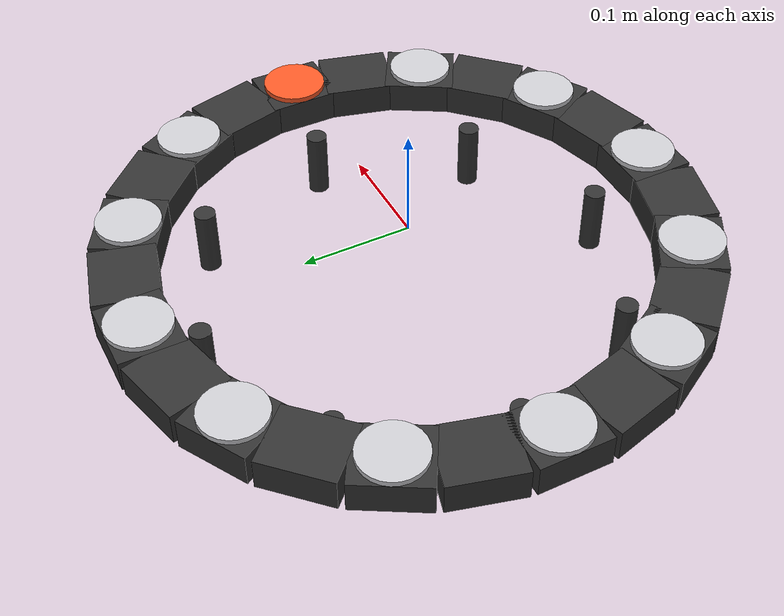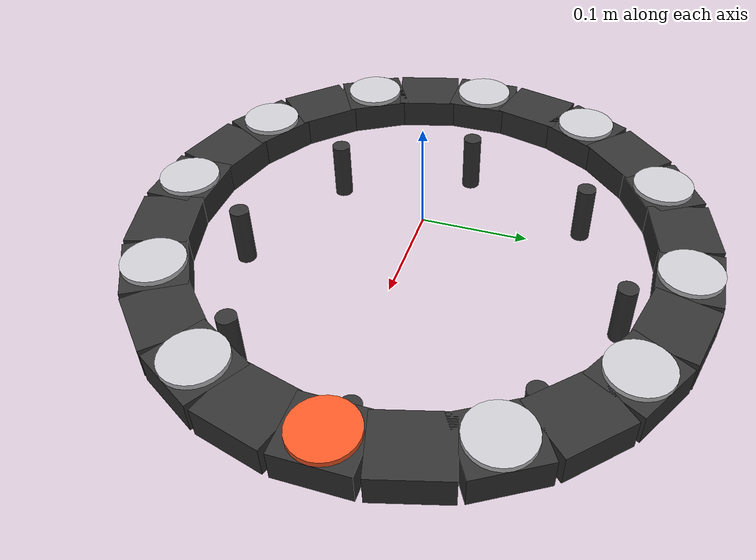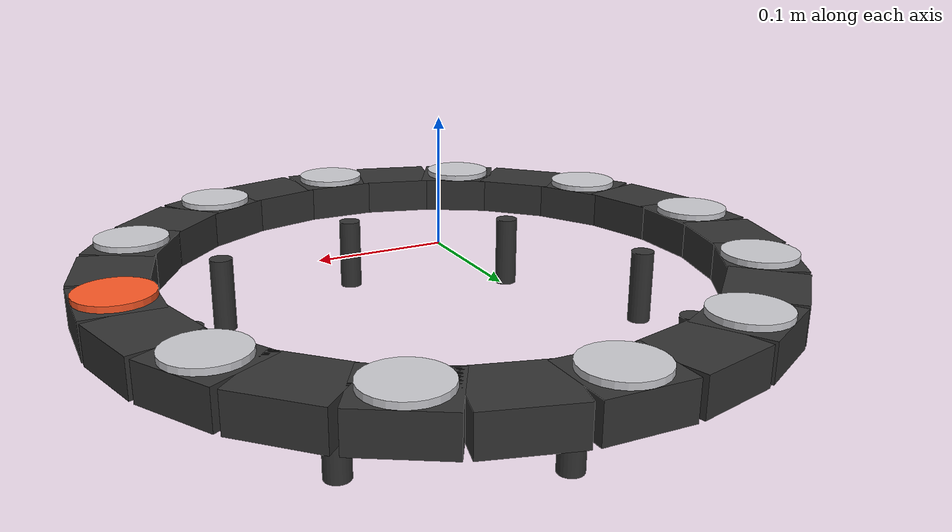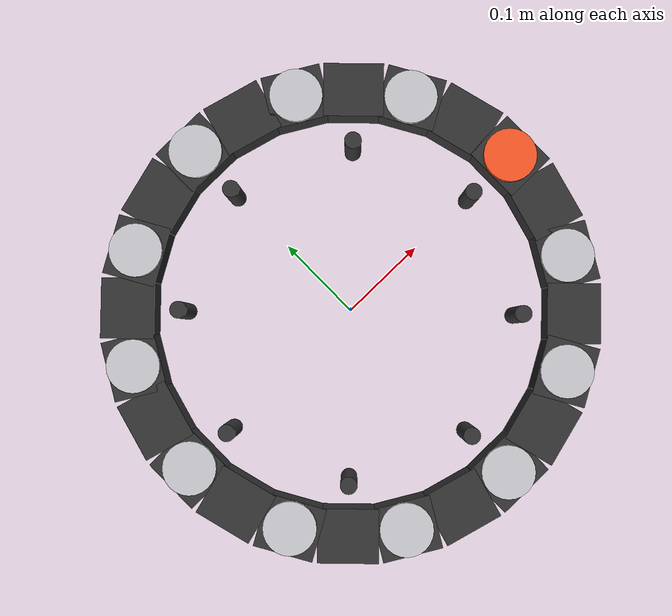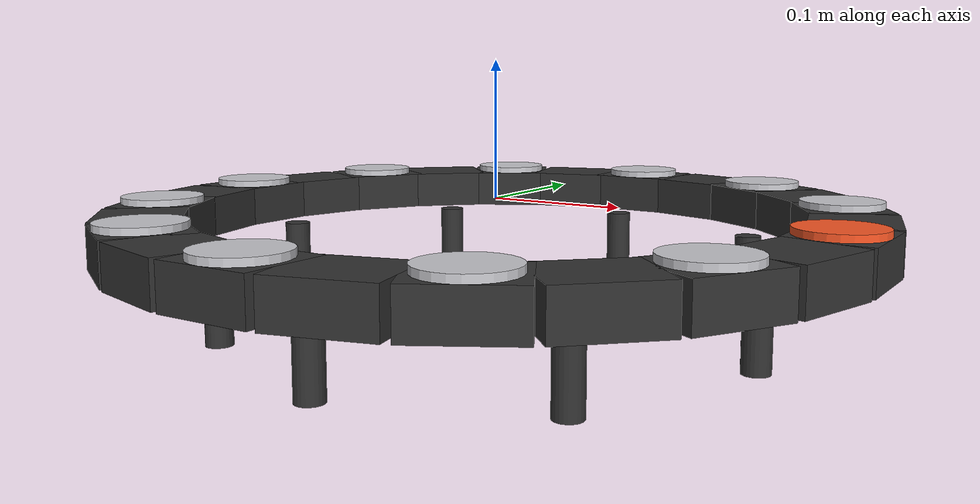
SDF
<?xml version="1.0"?>
<sdf version="1.6">
  <model name="payload_model">
    <static>true</static>
    <link name="payload_link">
      <!-- M2A static circular bench fixture. Ring attachment plane is local z=0. -->
      <collision name="ring_segment_0_collision">
        <pose>0.250000000000 0.000000000000 -0.020000000000 0 0 1.570796326795</pose>
        <geometry><box><size>0.068067840828 0.060000000000 0.030000000000</size></box></geometry>
      </collision>
      <visual name="ring_segment_0_visual">
        <pose>0.250000000000 0.000000000000 -0.020000000000 0 0 1.570796326795</pose>
        <geometry><box><size>0.068067840828 0.060000000000 0.030000000000</size></box></geometry>
        <material><ambient>0.12 0.12 0.12 1</ambient><diffuse>0.20 0.20 0.20 1</diffuse></material>
      </visual>
      <collision name="ring_segment_1_collision">
        <pose>0.241481456572 0.064704761276 -0.020000000000 0 0 1.832595714594</pose>
        <geometry><box><size>0.068067840828 0.060000000000 0.030000000000</size></box></geometry>
      </collision>
      <visual name="ring_segment_1_visual">
        <pose>0.241481456572 0.064704761276 -0.020000000000 0 0 1.832595714594</pose>
        <geometry><box><size>0.068067840828 0.060000000000 0.030000000000</size></box></geometry>
        <material><ambient>0.12 0.12 0.12 1</ambient><diffuse>0.20 0.20 0.20 1</diffuse></material>
      </visual>
      <collision name="ring_segment_2_collision">
        <pose>0.216506350946 0.125000000000 -0.020000000000 0 0 2.094395102393</pose>
        <geometry><box><size>0.068067840828 0.060000000000 0.030000000000</size></box></geometry>
      </collision>
      <visual name="ring_segment_2_visual">
        <pose>0.216506350946 0.125000000000 -0.020000000000 0 0 2.094395102393</pose>
        <geometry><box><size>0.068067840828 0.060000000000 0.030000000000</size></box></geometry>
        <material><ambient>0.12 0.12 0.12 1</ambient><diffuse>0.20 0.20 0.20 1</diffuse></material>
      </visual>
      <collision name="ring_segment_3_collision">
        <pose>0.176776695297 0.176776695297 -0.020000000000 0 0 2.356194490192</pose>
        <geometry><box><size>0.068067840828 0.060000000000 0.030000000000</size></box></geometry>
      </collision>
      <visual name="ring_segment_3_visual">
        <pose>0.176776695297 0.176776695297 -0.020000000000 0 0 2.356194490192</pose>
        <geometry><box><size>0.068067840828 0.060000000000 0.030000000000</size></box></geometry>
        <material><ambient>0.12 0.12 0.12 1</ambient><diffuse>0.20 0.20 0.20 1</diffuse></material>
      </visual>
      <collision name="ring_segment_4_collision">
        <pose>0.125000000000 0.216506350946 -0.020000000000 0 0 2.617993877991</pose>
        <geometry><box><size>0.068067840828 0.060000000000 0.030000000000</size></box></geometry>
      </collision>
      <visual name="ring_segment_4_visual">
        <pose>0.125000000000 0.216506350946 -0.020000000000 0 0 2.617993877991</pose>
        <geometry><box><size>0.068067840828 0.060000000000 0.030000000000</size></box></geometry>
        <material><ambient>0.12 0.12 0.12 1</ambient><diffuse>0.20 0.20 0.20 1</diffuse></material>
      </visual>
      <collision name="ring_segment_5_collision">
        <pose>0.064704761276 0.241481456572 -0.020000000000 0 0 2.879793265791</pose>
        <geometry><box><size>0.068067840828 0.060000000000 0.030000000000</size></box></geometry>
      </collision>
      <visual name="ring_segment_5_visual">
        <pose>0.064704761276 0.241481456572 -0.020000000000 0 0 2.879793265791</pose>
        <geometry><box><size>0.068067840828 0.060000000000 0.030000000000</size></box></geometry>
        <material><ambient>0.12 0.12 0.12 1</ambient><diffuse>0.20 0.20 0.20 1</diffuse></material>
      </visual>
      <collision name="ring_segment_6_collision">
        <pose>0.000000000000 0.250000000000 -0.020000000000 0 0 3.141592653590</pose>
        <geometry><box><size>0.068067840828 0.060000000000 0.030000000000</size></box></geometry>
      </collision>
      <visual name="ring_segment_6_visual">
        <pose>0.000000000000 0.250000000000 -0.020000000000 0 0 3.141592653590</pose>
        <geometry><box><size>0.068067840828 0.060000000000 0.030000000000</size></box></geometry>
        <material><ambient>0.12 0.12 0.12 1</ambient><diffuse>0.20 0.20 0.20 1</diffuse></material>
      </visual>
      <collision name="ring_segment_7_collision">
        <pose>-0.064704761276 0.241481456572 -0.020000000000 0 0 3.403392041389</pose>
        <geometry><box><size>0.068067840828 0.060000000000 0.030000000000</size></box></geometry>
      </collision>
      <visual name="ring_segment_7_visual">
        <pose>-0.064704761276 0.241481456572 -0.020000000000 0 0 3.403392041389</pose>
        <geometry><box><size>0.068067840828 0.060000000000 0.030000000000</size></box></geometry>
        <material><ambient>0.12 0.12 0.12 1</ambient><diffuse>0.20 0.20 0.20 1</diffuse></material>
      </visual>
      <collision name="ring_segment_8_collision">
        <pose>-0.125000000000 0.216506350946 -0.020000000000 0 0 3.665191429188</pose>
        <geometry><box><size>0.068067840828 0.060000000000 0.030000000000</size></box></geometry>
      </collision>
      <visual name="ring_segment_8_visual">
        <pose>-0.125000000000 0.216506350946 -0.020000000000 0 0 3.665191429188</pose>
        <geometry><box><size>0.068067840828 0.060000000000 0.030000000000</size></box></geometry>
        <material><ambient>0.12 0.12 0.12 1</ambient><diffuse>0.20 0.20 0.20 1</diffuse></material>
      </visual>
      <collision name="ring_segment_9_collision">
        <pose>-0.176776695297 0.176776695297 -0.020000000000 0 0 3.926990816987</pose>
        <geometry><box><size>0.068067840828 0.060000000000 0.030000000000</size></box></geometry>
      </collision>
      <visual name="ring_segment_9_visual">
        <pose>-0.176776695297 0.176776695297 -0.020000000000 0 0 3.926990816987</pose>
        <geometry><box><size>0.068067840828 0.060000000000 0.030000000000</size></box></geometry>
        <material><ambient>0.12 0.12 0.12 1</ambient><diffuse>0.20 0.20 0.20 1</diffuse></material>
      </visual>
      <collision name="ring_segment_10_collision">
        <pose>-0.216506350946 0.125000000000 -0.020000000000 0 0 4.188790204786</pose>
        <geometry><box><size>0.068067840828 0.060000000000 0.030000000000</size></box></geometry>
      </collision>
      <visual name="ring_segment_10_visual">
        <pose>-0.216506350946 0.125000000000 -0.020000000000 0 0 4.188790204786</pose>
        <geometry><box><size>0.068067840828 0.060000000000 0.030000000000</size></box></geometry>
        <material><ambient>0.12 0.12 0.12 1</ambient><diffuse>0.20 0.20 0.20 1</diffuse></material>
      </visual>
      <collision name="ring_segment_11_collision">
        <pose>-0.241481456572 0.064704761276 -0.020000000000 0 0 4.450589592586</pose>
        <geometry><box><size>0.068067840828 0.060000000000 0.030000000000</size></box></geometry>
      </collision>
      <visual name="ring_segment_11_visual">
        <pose>-0.241481456572 0.064704761276 -0.020000000000 0 0 4.450589592586</pose>
        <geometry><box><size>0.068067840828 0.060000000000 0.030000000000</size></box></geometry>
        <material><ambient>0.12 0.12 0.12 1</ambient><diffuse>0.20 0.20 0.20 1</diffuse></material>
      </visual>
      <collision name="ring_segment_12_collision">
        <pose>-0.250000000000 0.000000000000 -0.020000000000 0 0 4.712388980385</pose>
        <geometry><box><size>0.068067840828 0.060000000000 0.030000000000</size></box></geometry>
      </collision>
      <visual name="ring_segment_12_visual">
        <pose>-0.250000000000 0.000000000000 -0.020000000000 0 0 4.712388980385</pose>
        <geometry><box><size>0.068067840828 0.060000000000 0.030000000000</size></box></geometry>
        <material><ambient>0.12 0.12 0.12 1</ambient><diffuse>0.20 0.20 0.20 1</diffuse></material>
      </visual>
      <collision name="ring_segment_13_collision">
        <pose>-0.241481456572 -0.064704761276 -0.020000000000 0 0 4.974188368184</pose>
        <geometry><box><size>0.068067840828 0.060000000000 0.030000000000</size></box></geometry>
      </collision>
      <visual name="ring_segment_13_visual">
        <pose>-0.241481456572 -0.064704761276 -0.020000000000 0 0 4.974188368184</pose>
        <geometry><box><size>0.068067840828 0.060000000000 0.030000000000</size></box></geometry>
        <material><ambient>0.12 0.12 0.12 1</ambient><diffuse>0.20 0.20 0.20 1</diffuse></material>
      </visual>
      <collision name="ring_segment_14_collision">
        <pose>-0.216506350946 -0.125000000000 -0.020000000000 0 0 5.235987755983</pose>
        <geometry><box><size>0.068067840828 0.060000000000 0.030000000000</size></box></geometry>
      </collision>
      <visual name="ring_segment_14_visual">
        <pose>-0.216506350946 -0.125000000000 -0.020000000000 0 0 5.235987755983</pose>
        <geometry><box><size>0.068067840828 0.060000000000 0.030000000000</size></box></geometry>
        <material><ambient>0.12 0.12 0.12 1</ambient><diffuse>0.20 0.20 0.20 1</diffuse></material>
      </visual>
      <collision name="ring_segment_15_collision">
        <pose>-0.176776695297 -0.176776695297 -0.020000000000 0 0 5.497787143782</pose>
        <geometry><box><size>0.068067840828 0.060000000000 0.030000000000</size></box></geometry>
      </collision>
      <visual name="ring_segment_15_visual">
        <pose>-0.176776695297 -0.176776695297 -0.020000000000 0 0 5.497787143782</pose>
        <geometry><box><size>0.068067840828 0.060000000000 0.030000000000</size></box></geometry>
        <material><ambient>0.12 0.12 0.12 1</ambient><diffuse>0.20 0.20 0.20 1</diffuse></material>
      </visual>
      <collision name="ring_segment_16_collision">
        <pose>-0.125000000000 -0.216506350946 -0.020000000000 0 0 5.759586531581</pose>
        <geometry><box><size>0.068067840828 0.060000000000 0.030000000000</size></box></geometry>
      </collision>
      <visual name="ring_segment_16_visual">
        <pose>-0.125000000000 -0.216506350946 -0.020000000000 0 0 5.759586531581</pose>
        <geometry><box><size>0.068067840828 0.060000000000 0.030000000000</size></box></geometry>
        <material><ambient>0.12 0.12 0.12 1</ambient><diffuse>0.20 0.20 0.20 1</diffuse></material>
      </visual>
      <collision name="ring_segment_17_collision">
        <pose>-0.064704761276 -0.241481456572 -0.020000000000 0 0 6.021385919380</pose>
        <geometry><box><size>0.068067840828 0.060000000000 0.030000000000</size></box></geometry>
      </collision>
      <visual name="ring_segment_17_visual">
        <pose>-0.064704761276 -0.241481456572 -0.020000000000 0 0 6.021385919380</pose>
        <geometry><box><size>0.068067840828 0.060000000000 0.030000000000</size></box></geometry>
        <material><ambient>0.12 0.12 0.12 1</ambient><diffuse>0.20 0.20 0.20 1</diffuse></material>
      </visual>
      <collision name="ring_segment_18_collision">
        <pose>-0.000000000000 -0.250000000000 -0.020000000000 0 0 6.283185307180</pose>
        <geometry><box><size>0.068067840828 0.060000000000 0.030000000000</size></box></geometry>
      </collision>
      <visual name="ring_segment_18_visual">
        <pose>-0.000000000000 -0.250000000000 -0.020000000000 0 0 6.283185307180</pose>
        <geometry><box><size>0.068067840828 0.060000000000 0.030000000000</size></box></geometry>
        <material><ambient>0.12 0.12 0.12 1</ambient><diffuse>0.20 0.20 0.20 1</diffuse></material>
      </visual>
      <collision name="ring_segment_19_collision">
        <pose>0.064704761276 -0.241481456572 -0.020000000000 0 0 6.544984694979</pose>
        <geometry><box><size>0.068067840828 0.060000000000 0.030000000000</size></box></geometry>
      </collision>
      <visual name="ring_segment_19_visual">
        <pose>0.064704761276 -0.241481456572 -0.020000000000 0 0 6.544984694979</pose>
        <geometry><box><size>0.068067840828 0.060000000000 0.030000000000</size></box></geometry>
        <material><ambient>0.12 0.12 0.12 1</ambient><diffuse>0.20 0.20 0.20 1</diffuse></material>
      </visual>
      <collision name="ring_segment_20_collision">
        <pose>0.125000000000 -0.216506350946 -0.020000000000 0 0 6.806784082778</pose>
        <geometry><box><size>0.068067840828 0.060000000000 0.030000000000</size></box></geometry>
      </collision>
      <visual name="ring_segment_20_visual">
        <pose>0.125000000000 -0.216506350946 -0.020000000000 0 0 6.806784082778</pose>
        <geometry><box><size>0.068067840828 0.060000000000 0.030000000000</size></box></geometry>
        <material><ambient>0.12 0.12 0.12 1</ambient><diffuse>0.20 0.20 0.20 1</diffuse></material>
      </visual>
      <collision name="ring_segment_21_collision">
        <pose>0.176776695297 -0.176776695297 -0.020000000000 0 0 7.068583470577</pose>
        <geometry><box><size>0.068067840828 0.060000000000 0.030000000000</size></box></geometry>
      </collision>
      <visual name="ring_segment_21_visual">
        <pose>0.176776695297 -0.176776695297 -0.020000000000 0 0 7.068583470577</pose>
        <geometry><box><size>0.068067840828 0.060000000000 0.030000000000</size></box></geometry>
        <material><ambient>0.12 0.12 0.12 1</ambient><diffuse>0.20 0.20 0.20 1</diffuse></material>
      </visual>
      <collision name="ring_segment_22_collision">
        <pose>0.216506350946 -0.125000000000 -0.020000000000 0 0 7.330382858376</pose>
        <geometry><box><size>0.068067840828 0.060000000000 0.030000000000</size></box></geometry>
      </collision>
      <visual name="ring_segment_22_visual">
        <pose>0.216506350946 -0.125000000000 -0.020000000000 0 0 7.330382858376</pose>
        <geometry><box><size>0.068067840828 0.060000000000 0.030000000000</size></box></geometry>
        <material><ambient>0.12 0.12 0.12 1</ambient><diffuse>0.20 0.20 0.20 1</diffuse></material>
      </visual>
      <collision name="ring_segment_23_collision">
        <pose>0.241481456572 -0.064704761276 -0.020000000000 0 0 7.592182246175</pose>
        <geometry><box><size>0.068067840828 0.060000000000 0.030000000000</size></box></geometry>
      </collision>
      <visual name="ring_segment_23_visual">
        <pose>0.241481456572 -0.064704761276 -0.020000000000 0 0 7.592182246175</pose>
        <geometry><box><size>0.068067840828 0.060000000000 0.030000000000</size></box></geometry>
        <material><ambient>0.12 0.12 0.12 1</ambient><diffuse>0.20 0.20 0.20 1</diffuse></material>
      </visual>
      <collision name="plate_0_collision">
        <pose>0.250000000000 0.000000000000 -0.002500000000 0 0 0.000000000000</pose>
        <geometry><cylinder><radius>0.030</radius><length>0.005</length></cylinder></geometry>
      </collision>
      <visual name="plate_0_visual">
        <pose>0.250000000000 0.000000000000 -0.002500000000 0 0 0.000000000000</pose>
        <geometry><cylinder><radius>0.030</radius><length>0.005</length></cylinder></geometry>
        <material><ambient>0.90 0.25 0.10 1</ambient><diffuse>1.00 0.35 0.15 1</diffuse></material>
      </visual>
      <collision name="plate_1_collision">
        <pose>0.216506350946 0.125000000000 -0.002500000000 0 0 0.523598775598</pose>
        <geometry><cylinder><radius>0.030</radius><length>0.005</length></cylinder></geometry>
      </collision>
      <visual name="plate_1_visual">
        <pose>0.216506350946 0.125000000000 -0.002500000000 0 0 0.523598775598</pose>
        <geometry><cylinder><radius>0.030</radius><length>0.005</length></cylinder></geometry>
        <material><ambient>0.65 0.65 0.68 1</ambient><diffuse>0.80 0.80 0.82 1</diffuse></material>
      </visual>
      <collision name="plate_2_collision">
        <pose>0.125000000000 0.216506350946 -0.002500000000 0 0 1.047197551197</pose>
        <geometry><cylinder><radius>0.030</radius><length>0.005</length></cylinder></geometry>
      </collision>
      <visual name="plate_2_visual">
        <pose>0.125000000000 0.216506350946 -0.002500000000 0 0 1.047197551197</pose>
        <geometry><cylinder><radius>0.030</radius><length>0.005</length></cylinder></geometry>
        <material><ambient>0.65 0.65 0.68 1</ambient><diffuse>0.80 0.80 0.82 1</diffuse></material>
      </visual>
      <collision name="plate_3_collision">
        <pose>0.000000000000 0.250000000000 -0.002500000000 0 0 1.570796326795</pose>
        <geometry><cylinder><radius>0.030</radius><length>0.005</length></cylinder></geometry>
      </collision>
      <visual name="plate_3_visual">
        <pose>0.000000000000 0.250000000000 -0.002500000000 0 0 1.570796326795</pose>
        <geometry><cylinder><radius>0.030</radius><length>0.005</length></cylinder></geometry>
        <material><ambient>0.65 0.65 0.68 1</ambient><diffuse>0.80 0.80 0.82 1</diffuse></material>
      </visual>
      <collision name="plate_4_collision">
        <pose>-0.125000000000 0.216506350946 -0.002500000000 0 0 2.094395102393</pose>
        <geometry><cylinder><radius>0.030</radius><length>0.005</length></cylinder></geometry>
      </collision>
      <visual name="plate_4_visual">
        <pose>-0.125000000000 0.216506350946 -0.002500000000 0 0 2.094395102393</pose>
        <geometry><cylinder><radius>0.030</radius><length>0.005</length></cylinder></geometry>
        <material><ambient>0.65 0.65 0.68 1</ambient><diffuse>0.80 0.80 0.82 1</diffuse></material>
      </visual>
      <collision name="plate_5_collision">
        <pose>-0.216506350946 0.125000000000 -0.002500000000 0 0 2.617993877991</pose>
        <geometry><cylinder><radius>0.030</radius><length>0.005</length></cylinder></geometry>
      </collision>
      <visual name="plate_5_visual">
        <pose>-0.216506350946 0.125000000000 -0.002500000000 0 0 2.617993877991</pose>
        <geometry><cylinder><radius>0.030</radius><length>0.005</length></cylinder></geometry>
        <material><ambient>0.65 0.65 0.68 1</ambient><diffuse>0.80 0.80 0.82 1</diffuse></material>
      </visual>
      <collision name="plate_6_collision">
        <pose>-0.250000000000 0.000000000000 -0.002500000000 0 0 3.141592653590</pose>
        <geometry><cylinder><radius>0.030</radius><length>0.005</length></cylinder></geometry>
      </collision>
      <visual name="plate_6_visual">
        <pose>-0.250000000000 0.000000000000 -0.002500000000 0 0 3.141592653590</pose>
        <geometry><cylinder><radius>0.030</radius><length>0.005</length></cylinder></geometry>
        <material><ambient>0.65 0.65 0.68 1</ambient><diffuse>0.80 0.80 0.82 1</diffuse></material>
      </visual>
      <collision name="plate_7_collision">
        <pose>-0.216506350946 -0.125000000000 -0.002500000000 0 0 3.665191429188</pose>
        <geometry><cylinder><radius>0.030</radius><length>0.005</length></cylinder></geometry>
      </collision>
      <visual name="plate_7_visual">
        <pose>-0.216506350946 -0.125000000000 -0.002500000000 0 0 3.665191429188</pose>
        <geometry><cylinder><radius>0.030</radius><length>0.005</length></cylinder></geometry>
        <material><ambient>0.65 0.65 0.68 1</ambient><diffuse>0.80 0.80 0.82 1</diffuse></material>
      </visual>
      <collision name="plate_8_collision">
        <pose>-0.125000000000 -0.216506350946 -0.002500000000 0 0 4.188790204786</pose>
        <geometry><cylinder><radius>0.030</radius><length>0.005</length></cylinder></geometry>
      </collision>
      <visual name="plate_8_visual">
        <pose>-0.125000000000 -0.216506350946 -0.002500000000 0 0 4.188790204786</pose>
        <geometry><cylinder><radius>0.030</radius><length>0.005</length></cylinder></geometry>
        <material><ambient>0.65 0.65 0.68 1</ambient><diffuse>0.80 0.80 0.82 1</diffuse></material>
      </visual>
      <collision name="plate_9_collision">
        <pose>-0.000000000000 -0.250000000000 -0.002500000000 0 0 4.712388980385</pose>
        <geometry><cylinder><radius>0.030</radius><length>0.005</length></cylinder></geometry>
      </collision>
      <visual name="plate_9_visual">
        <pose>-0.000000000000 -0.250000000000 -0.002500000000 0 0 4.712388980385</pose>
        <geometry><cylinder><radius>0.030</radius><length>0.005</length></cylinder></geometry>
        <material><ambient>0.65 0.65 0.68 1</ambient><diffuse>0.80 0.80 0.82 1</diffuse></material>
      </visual>
      <collision name="plate_10_collision">
        <pose>0.125000000000 -0.216506350946 -0.002500000000 0 0 5.235987755983</pose>
        <geometry><cylinder><radius>0.030</radius><length>0.005</length></cylinder></geometry>
      </collision>
      <visual name="plate_10_visual">
        <pose>0.125000000000 -0.216506350946 -0.002500000000 0 0 5.235987755983</pose>
        <geometry><cylinder><radius>0.030</radius><length>0.005</length></cylinder></geometry>
        <material><ambient>0.65 0.65 0.68 1</ambient><diffuse>0.80 0.80 0.82 1</diffuse></material>
      </visual>
      <collision name="plate_11_collision">
        <pose>0.216506350946 -0.125000000000 -0.002500000000 0 0 5.759586531581</pose>
        <geometry><cylinder><radius>0.030</radius><length>0.005</length></cylinder></geometry>
      </collision>
      <visual name="plate_11_visual">
        <pose>0.216506350946 -0.125000000000 -0.002500000000 0 0 5.759586531581</pose>
        <geometry><cylinder><radius>0.030</radius><length>0.005</length></cylinder></geometry>
        <material><ambient>0.65 0.65 0.68 1</ambient><diffuse>0.80 0.80 0.82 1</diffuse></material>
      </visual>
      <collision name="ground_leg_0_collision">
        <pose>0.200000000000 0.000000000000 -0.067500000000 0 0 0</pose>
        <geometry><cylinder><radius>0.010</radius><length>0.065</length></cylinder></geometry>
      </collision>
      <visual name="ground_leg_0_visual">
        <pose>0.200000000000 0.000000000000 -0.067500000000 0 0 0</pose>
        <geometry><cylinder><radius>0.010</radius><length>0.065</length></cylinder></geometry>
        <material><ambient>0.12 0.12 0.12 1</ambient><diffuse>0.20 0.20 0.20 1</diffuse></material>
      </visual>
      <collision name="ground_leg_1_collision">
        <pose>0.141421356237 0.141421356237 -0.067500000000 0 0 0</pose>
        <geometry><cylinder><radius>0.010</radius><length>0.065</length></cylinder></geometry>
      </collision>
      <visual name="ground_leg_1_visual">
        <pose>0.141421356237 0.141421356237 -0.067500000000 0 0 0</pose>
        <geometry><cylinder><radius>0.010</radius><length>0.065</length></cylinder></geometry>
        <material><ambient>0.12 0.12 0.12 1</ambient><diffuse>0.20 0.20 0.20 1</diffuse></material>
      </visual>
      <collision name="ground_leg_2_collision">
        <pose>0.000000000000 0.200000000000 -0.067500000000 0 0 0</pose>
        <geometry><cylinder><radius>0.010</radius><length>0.065</length></cylinder></geometry>
      </collision>
      <visual name="ground_leg_2_visual">
        <pose>0.000000000000 0.200000000000 -0.067500000000 0 0 0</pose>
        <geometry><cylinder><radius>0.010</radius><length>0.065</length></cylinder></geometry>
        <material><ambient>0.12 0.12 0.12 1</ambient><diffuse>0.20 0.20 0.20 1</diffuse></material>
      </visual>
      <collision name="ground_leg_3_collision">
        <pose>-0.141421356237 0.141421356237 -0.067500000000 0 0 0</pose>
        <geometry><cylinder><radius>0.010</radius><length>0.065</length></cylinder></geometry>
      </collision>
      <visual name="ground_leg_3_visual">
        <pose>-0.141421356237 0.141421356237 -0.067500000000 0 0 0</pose>
        <geometry><cylinder><radius>0.010</radius><length>0.065</length></cylinder></geometry>
        <material><ambient>0.12 0.12 0.12 1</ambient><diffuse>0.20 0.20 0.20 1</diffuse></material>
      </visual>
      <collision name="ground_leg_4_collision">
        <pose>-0.200000000000 0.000000000000 -0.067500000000 0 0 0</pose>
        <geometry><cylinder><radius>0.010</radius><length>0.065</length></cylinder></geometry>
      </collision>
      <visual name="ground_leg_4_visual">
        <pose>-0.200000000000 0.000000000000 -0.067500000000 0 0 0</pose>
        <geometry><cylinder><radius>0.010</radius><length>0.065</length></cylinder></geometry>
        <material><ambient>0.12 0.12 0.12 1</ambient><diffuse>0.20 0.20 0.20 1</diffuse></material>
      </visual>
      <collision name="ground_leg_5_collision">
        <pose>-0.141421356237 -0.141421356237 -0.067500000000 0 0 0</pose>
        <geometry><cylinder><radius>0.010</radius><length>0.065</length></cylinder></geometry>
      </collision>
      <visual name="ground_leg_5_visual">
        <pose>-0.141421356237 -0.141421356237 -0.067500000000 0 0 0</pose>
        <geometry><cylinder><radius>0.010</radius><length>0.065</length></cylinder></geometry>
        <material><ambient>0.12 0.12 0.12 1</ambient><diffuse>0.20 0.20 0.20 1</diffuse></material>
      </visual>
      <collision name="ground_leg_6_collision">
        <pose>-0.000000000000 -0.200000000000 -0.067500000000 0 0 0</pose>
        <geometry><cylinder><radius>0.010</radius><length>0.065</length></cylinder></geometry>
      </collision>
      <visual name="ground_leg_6_visual">
        <pose>-0.000000000000 -0.200000000000 -0.067500000000 0 0 0</pose>
        <geometry><cylinder><radius>0.010</radius><length>0.065</length></cylinder></geometry>
        <material><ambient>0.12 0.12 0.12 1</ambient><diffuse>0.20 0.20 0.20 1</diffuse></material>
      </visual>
      <collision name="ground_leg_7_collision">
        <pose>0.141421356237 -0.141421356237 -0.067500000000 0 0 0</pose>
        <geometry><cylinder><radius>0.010</radius><length>0.065</length></cylinder></geometry>
      </collision>
      <visual name="ground_leg_7_visual">
        <pose>0.141421356237 -0.141421356237 -0.067500000000 0 0 0</pose>
        <geometry><cylinder><radius>0.010</radius><length>0.065</length></cylinder></geometry>
        <material><ambient>0.12 0.12 0.12 1</ambient><diffuse>0.20 0.20 0.20 1</diffuse></material>
      </visual>
    </link>
  </model>
</sdf>
